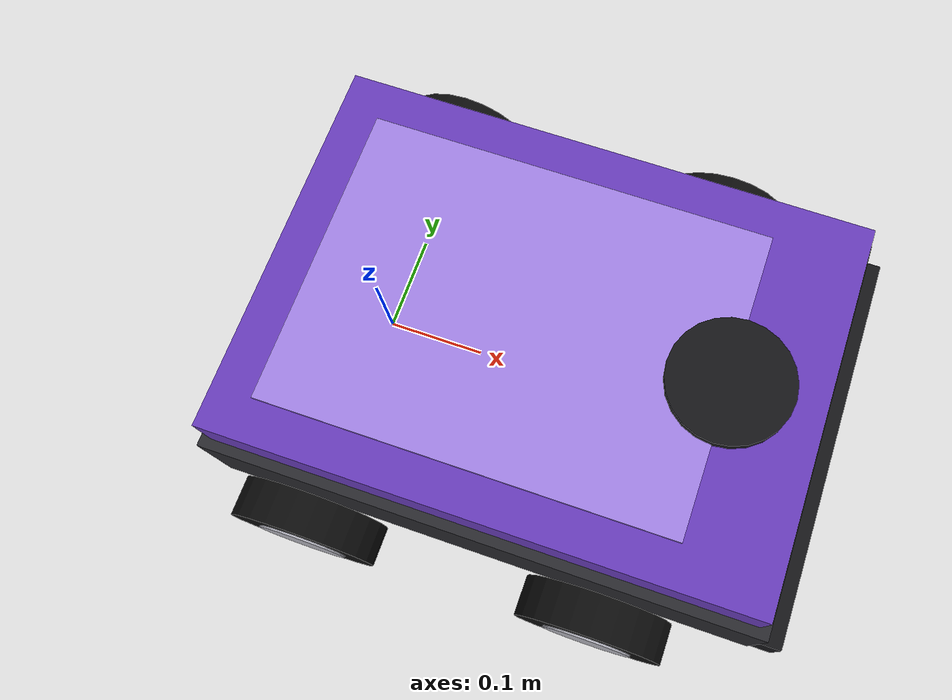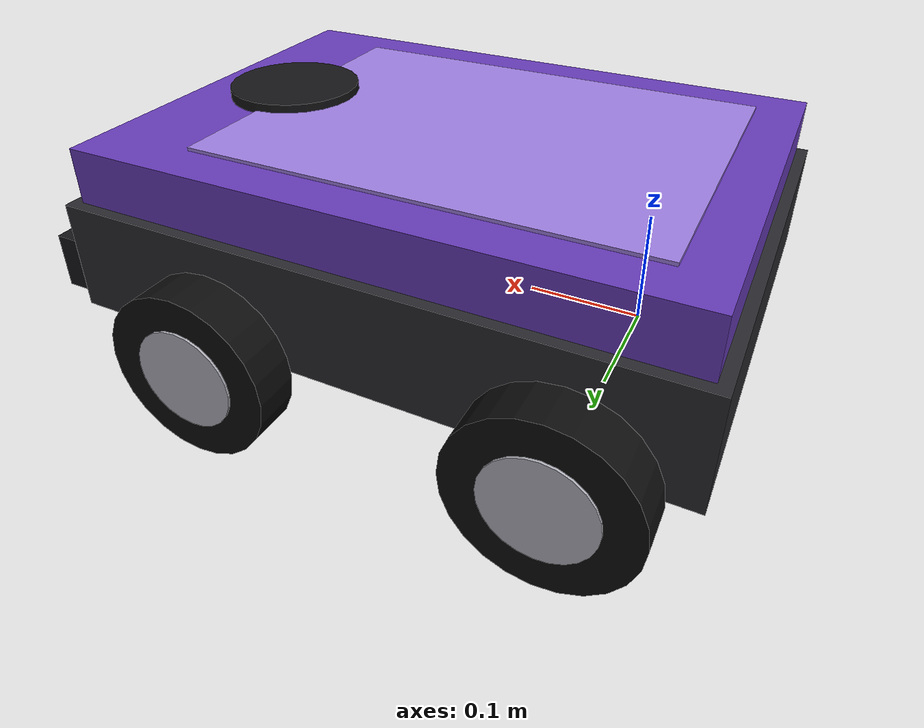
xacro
<?xml version="1.0"?>
<robot name="car_robot" xmlns:xacro="http://www.ros.org/wiki/xacro" xmlns:gazebo="http://gazebo.apache.org/xmlns/gazebo">

  <xacro:include filename="inertial_macros.xacro" />

  <!-- Base Link -->
  <link name="base_link"/>
  <link name="base_footprint">
    <collision>
      <geometry>
        <box size="0.55 0.4 0.01"/>
      </geometry>
    </collision>
  </link>

  <joint name="base_footprint_joint" type="fixed">
    <parent link="base_link"/>
    <child link="base_footprint"/>
    <origin xyz="0 0 -0.05"/>
  </joint>

  <!-- Chassis -->
  <joint name="chassis_joint" type="fixed">
    <parent link="base_link"/>
    <child link="chassis"/>
    <origin xyz="-0.1 0 0"/>
  </joint>

  <link name="chassis">
    <!-- Lower skirt -->
    <visual>
      <origin xyz="0.275 0 0.05"/>
      <geometry><box size="0.55 0.40 0.10"/></geometry>
      <material name="skirt_material"><color rgba="0.16 0.16 0.18 1.0"/></material>
    </visual>
    <!-- Upper shell -->
    <visual>
      <origin xyz="0.275 0 0.125"/>
      <geometry><box size="0.53 0.38 0.05"/></geometry>
      <material name="chassis_material"><color rgba="0.40 0.23 0.72 1.0"/></material>
    </visual>
    <!-- Top accent plate -->
    <visual>
      <origin xyz="0.25 0 0.151"/>
      <geometry><box size="0.40 0.30 0.004"/></geometry>
      <material name="accent_material"><color rgba="0.62 0.50 0.88 1.0"/></material>
    </visual>
    <!-- Front bumper -->
    <visual>
      <origin xyz="0.56 0 0.04"/>
      <geometry><box size="0.02 0.40 0.05"/></geometry>
      <material name="bumper_material"><color rgba="0.08 0.08 0.09 1.0"/></material>
    </visual>
    <!-- Front status LED strip -->
    <visual>
      <origin xyz="0.541 0 0.125"/>
      <geometry><box size="0.004 0.30 0.012"/></geometry>
      <material name="led_material"><color rgba="0.1 0.9 1.0 1.0"/></material>
    </visual>
    <!-- Lidar mount ring -->
    <visual>
      <origin xyz="0.45 0 0.1555"/>
      <geometry><cylinder radius="0.06" length="0.01"/></geometry>
      <material name="bumper_material"><color rgba="0.08 0.08 0.09 1.0"/></material>
    </visual>
    <collision>
      <origin xyz="0.275 0 0.075"/>
      <geometry>
        <box size="0.55 0.34 0.15"/>
      </geometry>
    </collision>
      <xacro:inertial_box mass="0.5" x="0.55" y="0.4" z="0.15">
            <origin xyz="0.275 0 0.075" rpy="0 0 0"/>
         </xacro:inertial_box>
  </link>

  <!-- Rear Wheels -->
  <joint name="left_wheel_joint" type="continuous">
    <parent link="base_link"/>
    <child link="left_wheel"/>
    <origin xyz="0 0.225 0" rpy="-1.57 0 0"/>
    <axis xyz="0 0 1"/>
  </joint>

  <link name="left_wheel">
    <visual>
      <geometry>
        <cylinder radius="0.075" length="0.04"/>
      </geometry>
      <material name="wheel_material">
        <color rgba="0.05 0.05 0.05 1.0"/>
      </material>
    </visual>
    <visual>
      <geometry><cylinder radius="0.045" length="0.044"/></geometry>
      <material name="hub_material"><color rgba="0.70 0.70 0.74 1.0"/></material>
    </visual>
    <collision>
      <geometry>
        <sphere radius="0.075"/>
      </geometry>
    </collision>
        <xacro:inertial_cylinder mass="0.1" length="0.04" radius="0.075">
            <origin xyz="0 0 0" rpy="0 0 0"/>
         </xacro:inertial_cylinder>
  </link>

  <joint name="right_wheel_joint" type="continuous">
    <parent link="base_link"/>
    <child link="right_wheel"/>
    <origin xyz="0 -0.225 0" rpy="1.57 0 0"/>
    <axis xyz="0 0 -1"/>
  </joint>

  <link name="right_wheel">
    <visual>
      <geometry>
        <cylinder radius="0.075" length="0.04"/>
      </geometry>
      <material name="wheel_material">
        <color rgba="0.05 0.05 0.05 1.0"/>
      </material>
    </visual>
    <visual>
      <geometry><cylinder radius="0.045" length="0.044"/></geometry>
      <material name="hub_material"><color rgba="0.70 0.70 0.74 1.0"/></material>
    </visual>
    <collision>
      <geometry>
        <sphere radius="0.075"/>
      </geometry>
    </collision>
        <xacro:inertial_cylinder mass="0.1" length="0.04" radius="0.075">
            <origin xyz="0 0 0" rpy="0 0 0"/>
         </xacro:inertial_cylinder>
  </link>

  <!-- Front Wheels -->
  <joint name="left_front_wheel_joint" type="fixed">
    <parent link="base_link"/>
    <child link="left_front_wheel"/>
    <origin xyz="0.3 0.225 0" rpy="-1.57 0 0"/>
    <axis xyz="0 0 1"/>
  </joint>

  <link name="left_front_wheel">
    <visual>
      <geometry>
        <cylinder radius="0.075" length="0.04"/>
      </geometry>
      <material name="wheel_material">
        <color rgba="0.05 0.05 0.05 1.0"/>
      </material>
    </visual>
    <visual>
      <geometry><cylinder radius="0.045" length="0.044"/></geometry>
      <material name="hub_material"><color rgba="0.70 0.70 0.74 1.0"/></material>
    </visual>
    <collision>
      <geometry>
        <sphere radius="0.075"/>
      </geometry>
    </collision>
        <xacro:inertial_cylinder mass="0.1" length="0.04" radius="0.075">
            <origin xyz="0 0 0" rpy="0 0 0"/>
         </xacro:inertial_cylinder>
  </link>

  <joint name="right_front_wheel_joint" type="fixed">
    <parent link="base_link"/>
    <child link="right_front_wheel"/>
    <origin xyz="0.3 -0.225 0" rpy="1.57 0 0"/>
    <axis xyz="0 0 -1"/>
  </joint>

  <link name="right_front_wheel">
    <visual>
      <geometry>
        <cylinder radius="0.075" length="0.04"/>
      </geometry>
      <material name="wheel_material">
        <color rgba="0.05 0.05 0.05 1.0"/>
      </material>
    </visual>
    <visual>
      <geometry><cylinder radius="0.045" length="0.044"/></geometry>
      <material name="hub_material"><color rgba="0.70 0.70 0.74 1.0"/></material>
    </visual>
    <collision>
      <geometry>
        <sphere radius="0.075"/>
      </geometry>
    </collision>
        <xacro:inertial_cylinder mass="0.1" length="0.04" radius="0.075">
            <origin xyz="0 0 0" rpy="0 0 0"/>
         </xacro:inertial_cylinder>
  </link>

  <!-- Gazebo Parameters -->
  <gazebo reference="chassis">
    <mu1>1.0</mu1>
    <mu2>1.0</mu2>
  </gazebo>

  <gazebo reference="left_wheel">
    <mu1>1.0</mu1>
    <mu2>1.0</mu2>
  </gazebo>

  <gazebo reference="right_wheel">
    <mu1>1.0</mu1>
    <mu2>1.0</mu2>
  </gazebo>

  <gazebo reference="left_front_wheel">
       <mu1>0.000001</mu1>
         <mu2>0.000001</mu2>
  </gazebo>

  <gazebo reference="right_front_wheel">
     <mu1>0.000001</mu1>
         <mu2>0.000001</mu2>
  </gazebo>

</robot>
